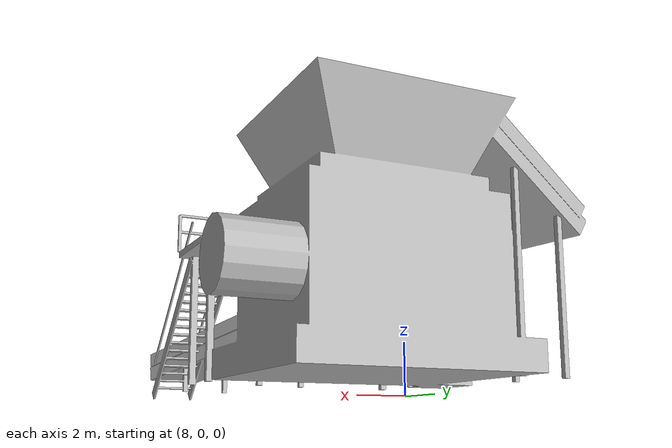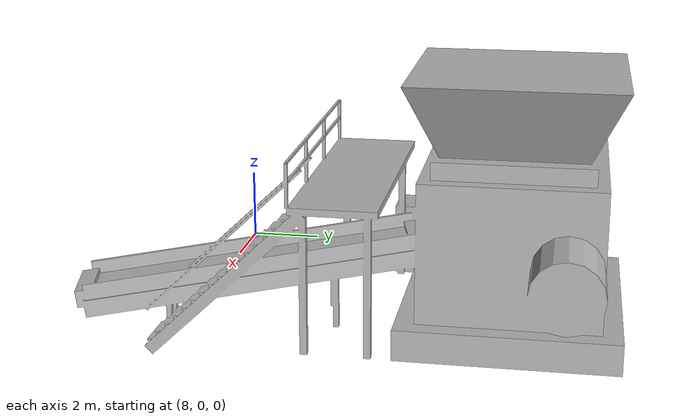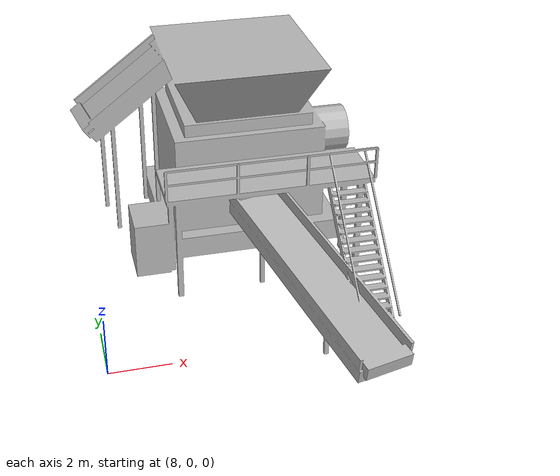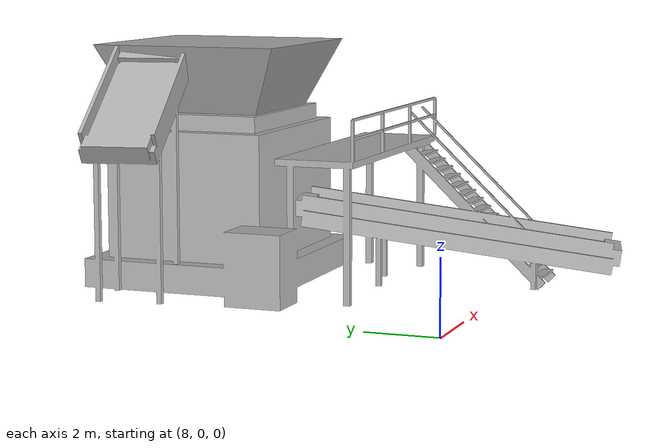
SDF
<?xml version="1.0"?>
<sdf version="1.7">
  <model name="secondary_processor">
    <static>true</static>
    <link name="link">
      <visual name="visual">
        <geometry>
          <mesh><uri>model://secondary_processor/meshes/secondary_processor.obj</uri><scale>1 1 1</scale></mesh>
        </geometry>
      </visual>
      <collision name="collision">
        <geometry>
          <mesh><uri>model://secondary_processor/meshes/secondary_processor.obj</uri><scale>1 1 1</scale></mesh>
        </geometry>
      </collision>
    </link>
  </model>
</sdf>
